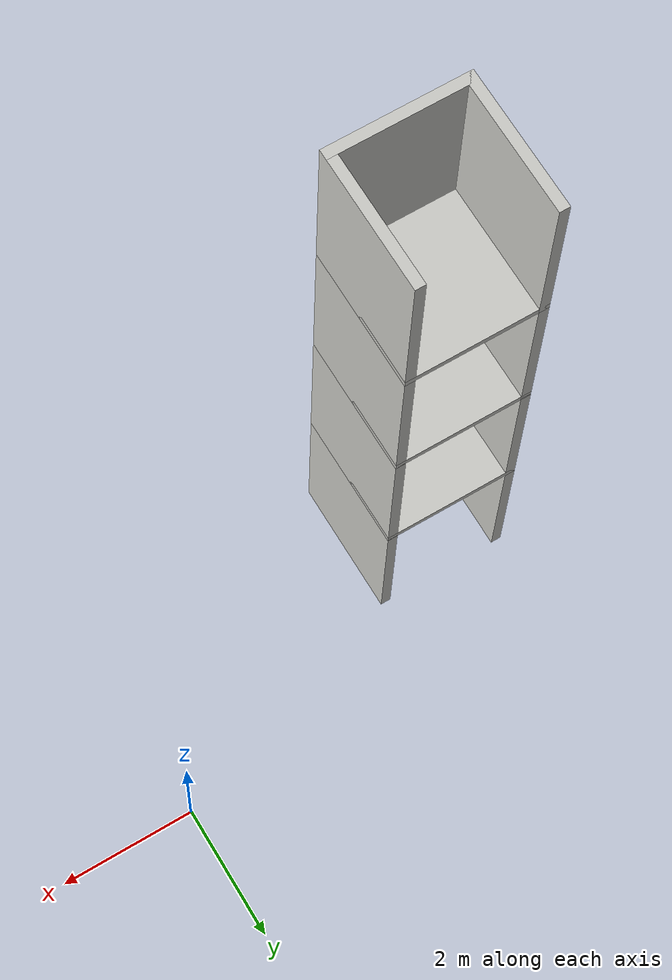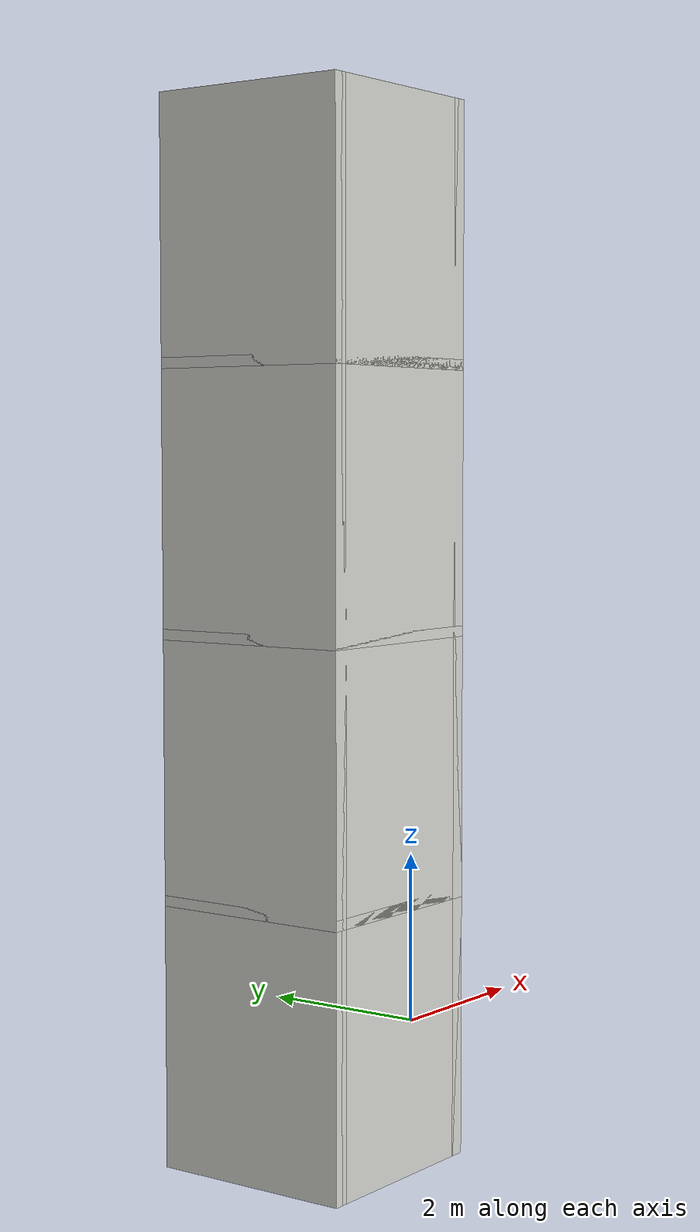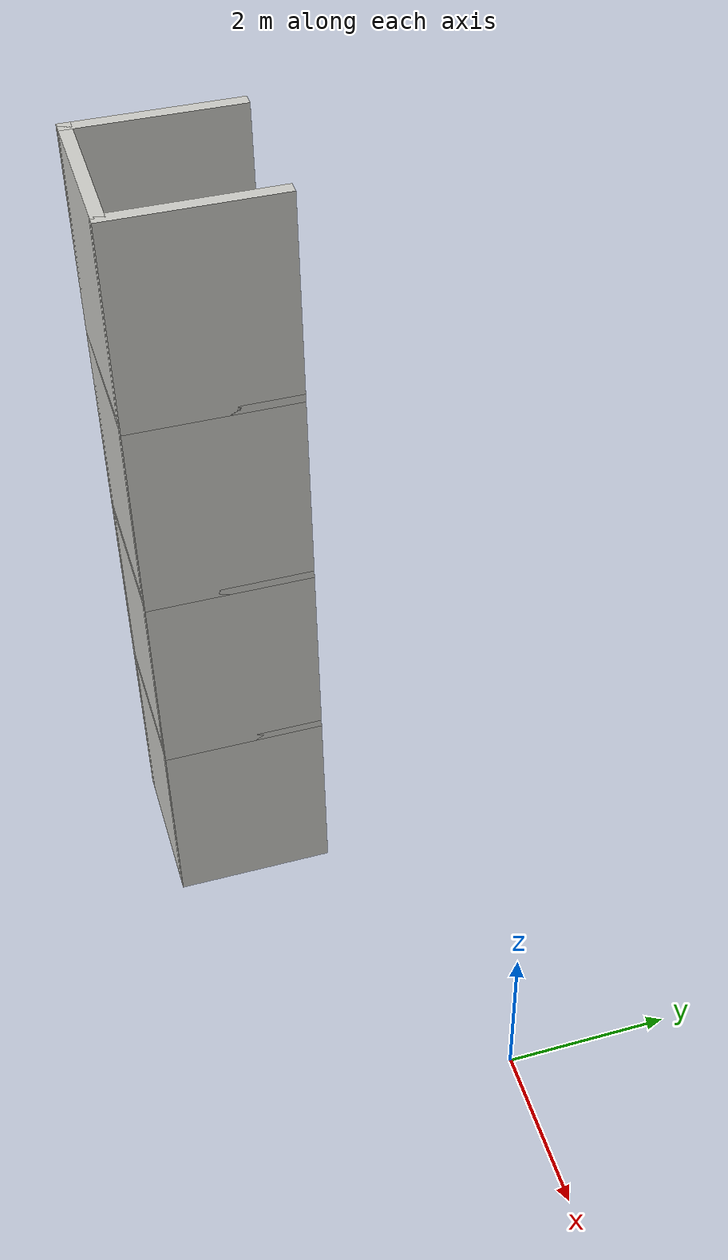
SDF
<?xml version='1.0'?>
<sdf version='1.7'>
  <model name='4th_building'>
    <pose>-2.9225 -1.6325 0 0 -0 0</pose>
    <link name='Floor_1'>
      <collision name='Floor_1_Collision'>
        <geometry>
          <box>
            <size>2 2 0.1</size>
          </box>
        </geometry>
        <pose>0 0 0.05 0 -0 0</pose>
      </collision>
      <visual name='Floor_1_Visual'>
        <pose>0 0 0.05 0 -0 0</pose>
        <geometry>
          <box>
            <size>2 2 0.1</size>
          </box>
        </geometry>
        <material>
          <script>
            <uri>file://media/materials/scripts/gazebo.material</uri>
            <name>Gazebo/CeilingTiled</name>
          </script>
          <ambient>1 1 1 1</ambient>
        </material>
        <meta>
          <layer>1</layer>
        </meta>
      </visual>
      <pose>-1.9225 -0.6325 2.5 0 -0 0</pose>
    </link>
    <link name='Floor_10'>
      <collision name='Floor_10_Collision'>
        <geometry>
          <box>
            <size>2 2 0.1</size>
          </box>
        </geometry>
        <pose>0 0 0.05 0 -0 0</pose>
      </collision>
      <visual name='Floor_10_Visual'>
        <pose>0 0 0.05 0 -0 0</pose>
        <geometry>
          <box>
            <size>2 2 0.1</size>
          </box>
        </geometry>
        <material>
          <script>
            <uri>file://media/materials/scripts/gazebo.material</uri>
            <name>Gazebo/CeilingTiled</name>
          </script>
          <ambient>1 1 1 1</ambient>
        </material>
        <meta>
          <layer>3</layer>
        </meta>
      </visual>
      <pose>-1.9225 -0.6325 7.5 0 -0 0</pose>
    </link>
    <link name='Floor_9'>
      <collision name='Floor_9_Collision'>
        <geometry>
          <box>
            <size>2 2 0.1</size>
          </box>
        </geometry>
        <pose>0 0 0.05 0 -0 0</pose>
      </collision>
      <visual name='Floor_9_Visual'>
        <pose>0 0 0.05 0 -0 0</pose>
        <geometry>
          <box>
            <size>2 2 0.1</size>
          </box>
        </geometry>
        <material>
          <script>
            <uri>file://media/materials/scripts/gazebo.material</uri>
            <name>Gazebo/CeilingTiled</name>
          </script>
          <ambient>1 1 1 1</ambient>
        </material>
        <meta>
          <layer>2</layer>
        </meta>
      </visual>
      <pose>-1.9225 -0.6325 5 0 -0 0</pose>
    </link>
    <link name='Wall_13'>
      <collision name='Wall_13_Collision'>
        <geometry>
          <box>
            <size>2 0.15 2.5</size>
          </box>
        </geometry>
        <pose>0 0 1.25 0 -0 0</pose>
      </collision>
      <visual name='Wall_13_Visual'>
        <pose>0 0 1.25 0 -0 0</pose>
        <geometry>
          <box>
            <size>2 0.15 2.5</size>
          </box>
        </geometry>
        <material>
          <script>
            <uri>file://media/materials/scripts/gazebo.material</uri>
            <name>Gazebo/CeilingTiled</name>
          </script>
          <ambient>1 1 1 1</ambient>
        </material>
        <meta>
          <layer>0</layer>
        </meta>
      </visual>
      <pose>-2.8475 -0.6325 0 0 -0 -1.5708</pose>
    </link>
    <link name='Wall_14'>
      <collision name='Wall_14_Collision'>
        <geometry>
          <box>
            <size>2 0.15 2.5</size>
          </box>
        </geometry>
        <pose>0 0 1.25 0 -0 0</pose>
      </collision>
      <visual name='Wall_14_Visual'>
        <pose>0 0 1.25 0 -0 0</pose>
        <geometry>
          <box>
            <size>2 0.15 2.5</size>
          </box>
        </geometry>
        <material>
          <script>
            <uri>file://media/materials/scripts/gazebo.material</uri>
            <name>Gazebo/CeilingTiled</name>
          </script>
          <ambient>1 1 1 1</ambient>
        </material>
        <meta>
          <layer>0</layer>
        </meta>
      </visual>
      <pose>-1.9225 -1.5575 0 0 -0 0</pose>
    </link>
    <link name='Wall_15'>
      <collision name='Wall_15_Collision'>
        <geometry>
          <box>
            <size>2 0.15 2.5</size>
          </box>
        </geometry>
        <pose>0 0 1.25 0 -0 0</pose>
      </collision>
      <visual name='Wall_15_Visual'>
        <pose>0 0 1.25 0 -0 0</pose>
        <geometry>
          <box>
            <size>2 0.15 2.5</size>
          </box>
        </geometry>
        <material>
          <script>
            <uri>file://media/materials/scripts/gazebo.material</uri>
            <name>Gazebo/CeilingTiled</name>
          </script>
          <ambient>1 1 1 1</ambient>
        </material>
        <meta>
          <layer>0</layer>
        </meta>
      </visual>
      <pose>-0.9975 -0.6325 0 0 -0 1.5708</pose>
    </link>
    <link name='Wall_17'>
      <collision name='Wall_17_Collision'>
        <geometry>
          <box>
            <size>2 0.15 2.5</size>
          </box>
        </geometry>
        <pose>0 0 1.25 0 -0 0</pose>
      </collision>
      <visual name='Wall_17_Visual'>
        <pose>0 0 1.25 0 -0 0</pose>
        <geometry>
          <box>
            <size>2 0.15 2.5</size>
          </box>
        </geometry>
        <material>
          <script>
            <uri>file://media/materials/scripts/gazebo.material</uri>
            <name>Gazebo/CeilingTiled</name>
          </script>
          <ambient>1 1 1 1</ambient>
        </material>
        <meta>
          <layer>1</layer>
        </meta>
      </visual>
      <pose>-2.8475 -0.6325 2.5 0 -0 -1.5708</pose>
    </link>
    <link name='Wall_18'>
      <collision name='Wall_18_Collision'>
        <geometry>
          <box>
            <size>2 0.15 2.5</size>
          </box>
        </geometry>
        <pose>0 0 1.25 0 -0 0</pose>
      </collision>
      <visual name='Wall_18_Visual'>
        <pose>0 0 1.25 0 -0 0</pose>
        <geometry>
          <box>
            <size>2 0.15 2.5</size>
          </box>
        </geometry>
        <material>
          <script>
            <uri>file://media/materials/scripts/gazebo.material</uri>
            <name>Gazebo/CeilingTiled</name>
          </script>
          <ambient>1 1 1 1</ambient>
        </material>
        <meta>
          <layer>1</layer>
        </meta>
      </visual>
      <pose>-1.9225 -1.5575 2.5 0 -0 0</pose>
    </link>
    <link name='Wall_19'>
      <collision name='Wall_19_Collision'>
        <geometry>
          <box>
            <size>2 0.15 2.5</size>
          </box>
        </geometry>
        <pose>0 0 1.25 0 -0 0</pose>
      </collision>
      <visual name='Wall_19_Visual'>
        <pose>0 0 1.25 0 -0 0</pose>
        <geometry>
          <box>
            <size>2 0.15 2.5</size>
          </box>
        </geometry>
        <material>
          <script>
            <uri>file://media/materials/scripts/gazebo.material</uri>
            <name>Gazebo/CeilingTiled</name>
          </script>
          <ambient>1 1 1 1</ambient>
        </material>
        <meta>
          <layer>1</layer>
        </meta>
      </visual>
      <pose>-0.9975 -0.6325 2.5 0 -0 1.5708</pose>
    </link>
    <link name='Wall_40'>
      <collision name='Wall_40_Collision'>
        <geometry>
          <box>
            <size>2 0.15 2.5</size>
          </box>
        </geometry>
        <pose>0 0 1.25 0 -0 0</pose>
      </collision>
      <visual name='Wall_40_Visual'>
        <pose>0 0 1.25 0 -0 0</pose>
        <geometry>
          <box>
            <size>2 0.15 2.5</size>
          </box>
        </geometry>
        <material>
          <script>
            <uri>file://media/materials/scripts/gazebo.material</uri>
            <name>Gazebo/CeilingTiled</name>
          </script>
          <ambient>1 1 1 1</ambient>
        </material>
        <meta>
          <layer>2</layer>
        </meta>
      </visual>
      <pose>-2.8475 -0.6325 5 0 -0 -1.5708</pose>
    </link>
    <link name='Wall_41'>
      <collision name='Wall_41_Collision'>
        <geometry>
          <box>
            <size>2 0.15 2.5</size>
          </box>
        </geometry>
        <pose>0 0 1.25 0 -0 0</pose>
      </collision>
      <visual name='Wall_41_Visual'>
        <pose>0 0 1.25 0 -0 0</pose>
        <geometry>
          <box>
            <size>2 0.15 2.5</size>
          </box>
        </geometry>
        <material>
          <script>
            <uri>file://media/materials/scripts/gazebo.material</uri>
            <name>Gazebo/CeilingTiled</name>
          </script>
          <ambient>1 1 1 1</ambient>
        </material>
        <meta>
          <layer>2</layer>
        </meta>
      </visual>
      <pose>-1.9225 -1.5575 5 0 -0 0</pose>
    </link>
    <link name='Wall_42'>
      <collision name='Wall_42_Collision'>
        <geometry>
          <box>
            <size>2 0.15 2.5</size>
          </box>
        </geometry>
        <pose>0 0 1.25 0 -0 0</pose>
      </collision>
      <visual name='Wall_42_Visual'>
        <pose>0 0 1.25 0 -0 0</pose>
        <geometry>
          <box>
            <size>2 0.15 2.5</size>
          </box>
        </geometry>
        <material>
          <script>
            <uri>file://media/materials/scripts/gazebo.material</uri>
            <name>Gazebo/CeilingTiled</name>
          </script>
          <ambient>1 1 1 1</ambient>
        </material>
        <meta>
          <layer>2</layer>
        </meta>
      </visual>
      <pose>-0.9975 -0.6325 5 0 -0 1.5708</pose>
    </link>
    <link name='Wall_43'>
      <collision name='Wall_43_Collision'>
        <geometry>
          <box>
            <size>2 0.15 2.5</size>
          </box>
        </geometry>
        <pose>0 0 1.25 0 -0 0</pose>
      </collision>
      <visual name='Wall_43_Visual'>
        <pose>0 0 1.25 0 -0 0</pose>
        <geometry>
          <box>
            <size>2 0.15 2.5</size>
          </box>
        </geometry>
        <material>
          <script>
            <uri>file://media/materials/scripts/gazebo.material</uri>
            <name>Gazebo/CeilingTiled</name>
          </script>
          <ambient>1 1 1 1</ambient>
        </material>
        <meta>
          <layer>3</layer>
        </meta>
      </visual>
      <pose>-2.8475 -0.6325 7.5 0 -0 -1.5708</pose>
    </link>
    <link name='Wall_44'>
      <collision name='Wall_44_Collision'>
        <geometry>
          <box>
            <size>2 0.15 2.5</size>
          </box>
        </geometry>
        <pose>0 0 1.25 0 -0 0</pose>
      </collision>
      <visual name='Wall_44_Visual'>
        <pose>0 0 1.25 0 -0 0</pose>
        <geometry>
          <box>
            <size>2 0.15 2.5</size>
          </box>
        </geometry>
        <material>
          <script>
            <uri>file://media/materials/scripts/gazebo.material</uri>
            <name>Gazebo/CeilingTiled</name>
          </script>
          <ambient>1 1 1 1</ambient>
        </material>
        <meta>
          <layer>3</layer>
        </meta>
      </visual>
      <pose>-1.9225 -1.5575 7.5 0 -0 0</pose>
    </link>
    <link name='Wall_45'>
      <collision name='Wall_45_Collision'>
        <geometry>
          <box>
            <size>2 0.15 2.5</size>
          </box>
        </geometry>
        <pose>0 0 1.25 0 -0 0</pose>
      </collision>
      <visual name='Wall_45_Visual'>
        <pose>0 0 1.25 0 -0 0</pose>
        <geometry>
          <box>
            <size>2 0.15 2.5</size>
          </box>
        </geometry>
        <material>
          <script>
            <uri>file://media/materials/scripts/gazebo.material</uri>
            <name>Gazebo/CeilingTiled</name>
          </script>
          <ambient>1 1 1 1</ambient>
        </material>
        <meta>
          <layer>3</layer>
        </meta>
      </visual>
      <pose>-0.9975 -0.6325 7.5 0 -0 1.5708</pose>
    </link>
    <static>1</static>
  </model>
</sdf>
